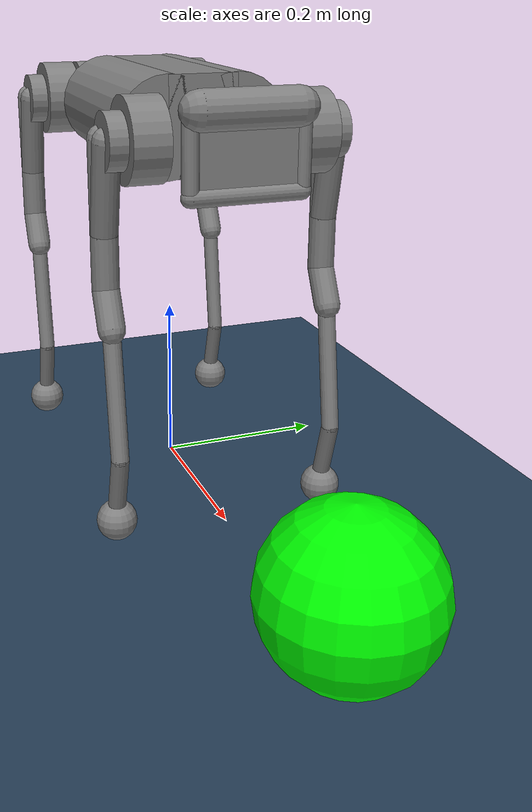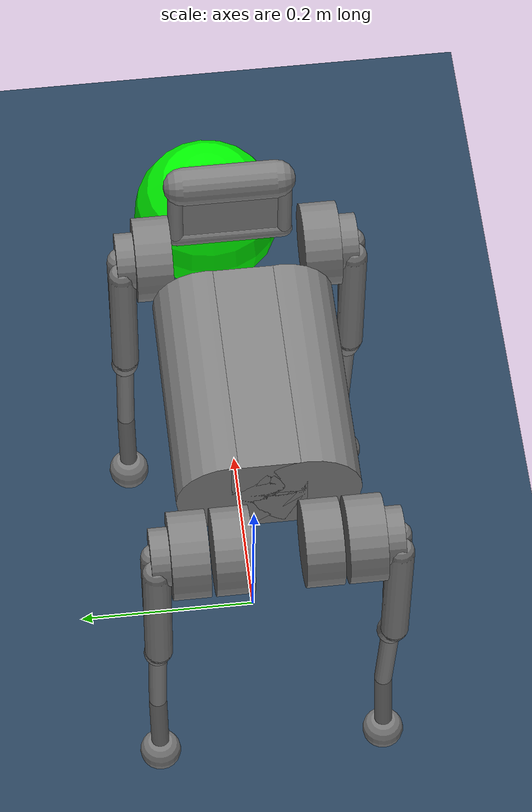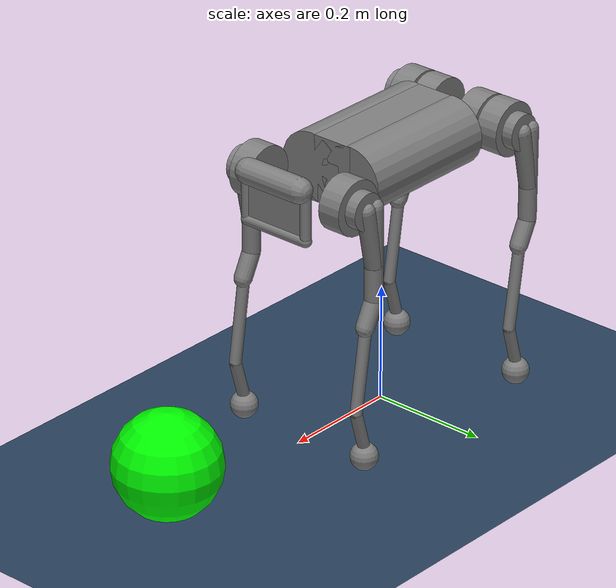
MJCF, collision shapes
<mujoco model="go1 scene">
    <include file="go1_copy_motor.xml"/>

    <statistic center="0 0 0.1" extent="0.8"/>

    <visual>
      <headlight diffuse="0.6 0.6 0.6" ambient="0.3 0.3 0.3" specular="0 0 0"/>
      <rgba haze="0.15 0.25 0.35 1"/>
      <global azimuth="-130" elevation="-20"/>
    </visual>

    <asset>
      <texture type="skybox" builtin="gradient" rgb1="0.3 0.5 0.7" rgb2="0 0 0" width="512" height="3072"/>
      <texture type="2d" name="groundplane" builtin="checker" mark="edge" rgb1="0.2 0.3 0.4" rgb2="0.1 0.2 0.3"
        markrgb="0.8 0.8 0.8" width="300" height="300"/>
      <material name="groundplane" texture="groundplane" texuniform="true" texrepeat="5 5" reflectance="0.2"/>
    </asset>

    <worldbody>
      <light pos="0 0 1.5" dir="0 0 -1" directional="true"/>
      <geom name="floor" size="0 0 0.05" type="plane" material="groundplane"/>
      <body name="soccer_ball" pos="0.5 0 0.09">
        <freejoint/>
        <geom type="sphere" size="0.0889" rgba="0 1 0 0.8" mass="0.318" material="groundplane" priority="1" condim="6" friction="0.7 0.05 0.0005"/>
        <!-- 分别为切向、扭转和滚动摩擦系数 -->
      </body>
    </worldbody>

    <!-- add ball + 7 dims -->
    <keyframe>
      <key name="home" qpos="0 0 0.27 1 0 0 0 -0.1 0.8 -1.5 0.1 0.8 -1.5 -0.1 1.0 -1.5 0.1 1.0 -1.5 0.5 0 0.09 1 0 0 0"
        ctrl="-0.1 0.8 -1.5 0.1 0.8 -1.5 -0.1 1.0 -1.5 0.1 1.0 -1.5" />
    </keyframe>

  </mujoco>

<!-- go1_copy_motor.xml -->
<mujoco model="go1">
  <compiler angle="radian" meshdir="assets" autolimits="true"/>

  <option cone="elliptic" impratio="100"/>

  <default>
    <default class="go1">
      <geom friction="0.6" margin="0.001" condim="1"/>
      <joint axis="0 1 0" damping="0.1" armature="0.01" frictionloss="0.2"/>
      <default class="abduction">
        <joint axis="1 0 0" range="-0.863 0.863"/>
        <motor ctrlrange="-23.7 23.7"/>
      </default>
      <default class="hip">
        <joint range="-0.686 4.501"/>
        <motor ctrlrange="-23.7 23.7"/>
      </default>
      <default class="knee">
        <joint range="-2.818 -0.888"/>
        <motor ctrlrange="-35.55 35.55"/>
      </default>
      <default class="visual">
        <geom type="mesh" contype="0" conaffinity="0" group="2" material="dark"/>
      </default>
      <default class="collision">
        <geom group="3" type="capsule"/>
        <default class="hip_left1">
          <geom size="0.046 0.02" pos="0 0.045 0" quat="1 1 0 0" type="cylinder"/>
        </default>
        <default class="hip_left2">
          <geom size="0.031 0.02" pos="0 0.065 0" quat="1 1 0 0" type="cylinder"/>
        </default>
        <default class="hip_left3">
          <geom size="0.046 0.02" quat="1 1 0 0" type="cylinder"/>
        </default>
        <default class="hip_right1">
          <geom size="0.046 0.02" pos="0 -0.045 0" quat="1 1 0 0" type="cylinder"/>
        </default>
        <default class="hip_right2">
          <geom size="0.031 0.02" pos="0 -0.065 0" quat="1 1 0 0" type="cylinder"/>
        </default>
        <default class="hip_right3">
          <geom size="0.046 0.02" quat="1 1 0 0" type="cylinder"/>
        </default>
        <default class="thigh1">
          <geom size="0.015" fromto="-0.02 0 0 -0.02 0 -0.16"/>
        </default>
        <default class="thigh2">
          <geom size="0.015" fromto="0 0 0 -0.02 0 -0.1"/>
        </default>
        <default class="thigh3">
          <geom size="0.015" fromto="-0.02 0 -0.16 0 0 -0.2"/>
        </default>
        <default class="calf1">
          <geom size="0.01" fromto="0 0 0 0.02 0 -0.13"/>
        </default>
        <default class="calf2">
          <geom size="0.01" fromto="0.02 0 -0.13 0 0 -0.2"/>
        </default>
        <default class="foot">
          <geom type="sphere" size="0.023" pos="0 0 -0.213" priority="1" solimp="0.015 1 0.023" condim="6"
            friction="0.8 0.02 0.01"/>
        </default>
      </default>
    </default>
  </default>

  <asset>
    <material name="dark" rgba="0.2 0.2 0.2 1"/>
    <mesh class="go1" file="trunk.stl"/>
    <mesh class="go1" file="hip.stl"/>
    <mesh class="go1" file="thigh_mirror.stl"/>
    <mesh class="go1" file="calf.stl"/>
    <mesh class="go1" file="thigh.stl"/>
  </asset>

  <worldbody>
    <light name="spotlight" mode="targetbodycom" target="trunk" pos="0 -1 2"/>
    <body name="trunk" pos="0 0 0.445" childclass="go1">
      <site name="head" pos="0.3 0 0" rgba="1 0 0 1" size="0.02" group="5"/>
      <inertial pos="0.0223 0.002 -0.0005" quat="-0.00342088 0.705204 0.000106698 0.708996" mass="5.204"
        diaginertia="0.0716565 0.0630105 0.0168101"/>
      <freejoint/>
      <geom class="visual" mesh="trunk"/>
      <geom class="collision" size="0.125 0.04 0.057" type="box"/>
      <geom class="collision" quat="1 0 1 0" pos="0 -0.04 0" size="0.058 0.125" type="cylinder"/>
      <geom class="collision" quat="1 0 1 0" pos="0 +0.04 0" size="0.058 0.125" type="cylinder"/>
      <geom class="collision" pos="0.25 0 0" size="0.005 0.06 0.05" type="box"/>
      <geom class="collision" pos="0.25 0.06 -0.01" size="0.009 0.035"/>
      <geom class="collision" pos="0.25 -0.06 -0.01" size="0.009 0.035"/>
      <geom class="collision" pos="0.25 0 -0.05" size="0.01 0.06" quat="1 1 0 0"/>
      <geom class="collision" pos="0.255 0 0.0355" size="0.021 0.052" quat="1 1 0 0"/>
      <site name="imu" pos="0 0 0"/>
      <body name="FL_hip" pos="0.1881 0.04675 0">
        <inertial pos="-0.0049166 -0.00762615 -8.865e-05" quat="0.482891 0.495027 0.514169 0.507341" mass="0.68"
          diaginertia="0.000734064 0.000468438 0.000398719"/>
        <joint class="abduction" name="FL_hip_joint"/>
        <geom class="visual" mesh="hip"/>
        <geom class="hip_left1"/>
        <geom class="hip_left2"/>
        <body name="FL_thigh" pos="0 0.08 0">
          <inertial pos="-0.00304722 -0.019315 -0.0305004" quat="0.753383 0.0775126 -0.0272313 0.65243" mass="1.009"
            diaginertia="0.00478717 0.00460903 0.000709268"/>
          <joint class="hip" name="FL_thigh_joint"/>
          <geom class="visual" mesh="thigh"/>
          <geom class="thigh1"/>
          <geom class="thigh2"/>
          <geom class="thigh3"/>
          <body name="FL_calf" pos="0 0 -0.213">
            <inertial pos="0.00429862 0.000976676 -0.146197" quat="0.691246 0.00357467 0.00511118 0.722592"
              mass="0.195862" diaginertia="0.00149767 0.00148468 3.58427e-05"/>
            <joint class="knee" name="FL_calf_joint"/>
            <geom class="visual" mesh="calf"/>
            <geom class="calf1"/>
            <geom class="calf2"/>
            <geom name="FL" class="foot"/>
            <site name="FL" pos="0 0 -0.213" type="sphere" size="0.023" group="5"/>
          </body>
        </body>
      </body>
      <body name="FR_hip" pos="0.1881 -0.04675 0">
        <inertial pos="-0.0049166 0.00762615 -8.865e-05" quat="0.507341 0.514169 0.495027 0.482891" mass="0.68"
          diaginertia="0.000734064 0.000468438 0.000398719"/>
        <joint class="abduction" name="FR_hip_joint"/>
        <geom class="visual" mesh="hip" quat="1 0 0 0"/>
        <geom class="hip_right1"/>
        <geom class="hip_right2"/>
        <body name="FR_thigh" pos="0 -0.08 0">
          <inertial pos="-0.00304722 0.019315 -0.0305004" quat="0.65243 -0.0272313 0.0775126 0.753383" mass="1.009"
            diaginertia="0.00478717 0.00460903 0.000709268"/>
          <joint class="hip" name="FR_thigh_joint"/>
          <geom class="visual" mesh="thigh_mirror"/>
          <geom class="thigh1"/>
          <geom class="thigh2"/>
          <geom class="thigh3"/>
          <body name="FR_calf" pos="0 0 -0.213">
            <inertial pos="0.00429862 0.000976676 -0.146197" quat="0.691246 0.00357467 0.00511118 0.722592"
              mass="0.195862" diaginertia="0.00149767 0.00148468 3.58427e-05"/>
            <joint class="knee" name="FR_calf_joint"/>
            <geom class="visual" mesh="calf"/>
            <geom class="calf1"/>
            <geom class="calf2"/>
            <geom name="FR" class="foot"/>
            <site name="FR" pos="0 0 -0.213" type="sphere" size="0.023" group="5"/>
          </body>
        </body>
      </body>
      <body name="RL_hip" pos="-0.1881 0.04675 0">
        <inertial pos="0.0049166 -0.00762615 -8.865e-05" quat="0.514169 0.507341 0.482891 0.495027" mass="0.68"
          diaginertia="0.000734064 0.000468438 0.000398719"/>
        <joint class="abduction" name="RL_hip_joint"/>
        <geom class="visual" quat="0 0 1 0" mesh="hip"/>
        <geom class="hip_left1"/>
        <geom class="hip_left2"/>
        <geom class="hip_left3"/>
        <body name="RL_thigh" pos="0 0.08 0">
          <inertial pos="-0.00304722 -0.019315 -0.0305004" quat="0.753383 0.0775126 -0.0272313 0.65243" mass="1.009"
            diaginertia="0.00478717 0.00460903 0.000709268"/>
          <joint class="hip" name="RL_thigh_joint"/>
          <geom class="visual" mesh="thigh"/>
          <geom class="thigh1"/>
          <geom class="thigh2"/>
          <geom class="thigh3"/>
          <body name="RL_calf" pos="0 0 -0.213">
            <inertial pos="0.00429862 0.000976676 -0.146197" quat="0.691246 0.00357467 0.00511118 0.722592"
              mass="0.195862" diaginertia="0.00149767 0.00148468 3.58427e-05"/>
            <joint class="knee" name="RL_calf_joint"/>
            <geom class="visual" mesh="calf"/>
            <geom class="calf1"/>
            <geom class="calf2"/>
            <geom name="RL" class="foot"/>
            <site name="RL" pos="0 0 -0.213" type="sphere" size="0.023" group="5"/>
          </body>
        </body>
      </body>
      <body name="RR_hip" pos="-0.1881 -0.04675 0">
        <inertial pos="0.0049166 0.00762615 -8.865e-05" quat="0.495027 0.482891 0.507341 0.514169" mass="0.68"
          diaginertia="0.000734064 0.000468438 0.000398719"/>
        <joint class="abduction" name="RR_hip_joint"/>
        <geom class="visual" quat="0 0 0 -1" mesh="hip"/>
        <geom class="hip_right1"/>
        <geom class="hip_right2"/>
        <geom class="hip_right3"/>
        <body name="RR_thigh" pos="0 -0.08 0">
          <inertial pos="-0.00304722 0.019315 -0.0305004" quat="0.65243 -0.0272313 0.0775126 0.753383" mass="1.009"
            diaginertia="0.00478717 0.00460903 0.000709268"/>
          <joint class="hip" name="RR_thigh_joint"/>
          <geom class="visual" mesh="thigh_mirror"/>
          <geom class="thigh1"/>
          <geom class="thigh2"/>
          <geom class="thigh3"/>
          <body name="RR_calf" pos="0 0 -0.213">
            <inertial pos="0.00429862 0.000976676 -0.146197" quat="0.691246 0.00357467 0.00511118 0.722592"
              mass="0.195862" diaginertia="0.00149767 0.00148468 3.58427e-05"/>
            <joint class="knee" name="RR_calf_joint"/>
            <geom class="visual" mesh="calf"/>
            <geom class="calf1"/>
            <geom class="calf2"/>
            <geom name="RR" class="foot"/>
            <site name="RR" pos="0 0 -0.213" type="sphere" size="0.023" group="5"/>
          </body>
        </body>
      </body>
    </body>
  </worldbody>

  <actuator>
    <motor class="abduction" name="FR_hip" joint="FR_hip_joint"/>
    <motor class="hip" name="FR_thigh" joint="FR_thigh_joint"/>
    <motor class="knee" name="FR_calf" joint="FR_calf_joint"/>
    <motor class="abduction" name="FL_hip" joint="FL_hip_joint"/>
    <motor class="hip" name="FL_thigh" joint="FL_thigh_joint"/>
    <motor class="knee" name="FL_calf" joint="FL_calf_joint"/>
    <motor class="abduction" name="RR_hip" joint="RR_hip_joint"/>
    <motor class="hip" name="RR_thigh" joint="RR_thigh_joint"/>
    <motor class="knee" name="RR_calf" joint="RR_calf_joint"/>
    <motor class="abduction" name="RL_hip" joint="RL_hip_joint"/>
    <motor class="hip" name="RL_thigh" joint="RL_thigh_joint"/>
    <motor class="knee" name="RL_calf" joint="RL_calf_joint"/>
  </actuator>

  <sensor>
    <jointpos name="FR_hip_pos" joint="FR_hip_joint" />
    <jointpos name="FR_thigh_pos" joint="FR_thigh_joint" />
    <jointpos name="FR_calf_pos" joint="FR_calf_joint" />
    <jointpos name="FL_hip_pos" joint="FL_hip_joint" />
    <jointpos name="FL_thigh_pos" joint="FL_thigh_joint" />
    <jointpos name="FL_calf_pos" joint="FL_calf_joint" />
    <jointpos name="RR_hip_pos" joint="RR_hip_joint" />
    <jointpos name="RR_thigh_pos" joint="RR_thigh_joint" />
    <jointpos name="RR_calf_pos" joint="RR_calf_joint" />
    <jointpos name="RL_hip_pos" joint="RL_hip_joint" />
    <jointpos name="RL_thigh_pos" joint="RL_thigh_joint" />
    <jointpos name="RL_calf_pos" joint="RL_calf_joint" />

    <jointvel name="FR_hip_vel" joint="FR_hip_joint" />
    <jointvel name="FR_thigh_vel" joint="FR_thigh_joint" />
    <jointvel name="FR_calf_vel" joint="FR_calf_joint" />
    <jointvel name="FL_hip_vel" joint="FL_hip_joint" />
    <jointvel name="FL_thigh_vel" joint="FL_thigh_joint" />
    <jointvel name="FL_calf_vel" joint="FL_calf_joint" />
    <jointvel name="RR_hip_vel" joint="RR_hip_joint" />
    <jointvel name="RR_thigh_vel" joint="RR_thigh_joint" />
    <jointvel name="RR_calf_vel" joint="RR_calf_joint" />
    <jointvel name="RL_hip_vel" joint="RL_hip_joint" />
    <jointvel name="RL_thigh_vel" joint="RL_thigh_joint" />
    <jointvel name="RL_calf_vel" joint="RL_calf_joint" />

    <jointactuatorfrc name="FR_hip_torque" joint="FR_hip_joint" noise="0.01" />
    <jointactuatorfrc name="FR_thigh_torque" joint="FR_thigh_joint" noise="0.01" />
    <jointactuatorfrc name="FR_calf_torque" joint="FR_calf_joint" noise="0.01" />
    <jointactuatorfrc name="FL_hip_torque" joint="FL_hip_joint" noise="0.01" />
    <jointactuatorfrc name="FL_thigh_torque" joint="FL_thigh_joint" noise="0.01" />
    <jointactuatorfrc name="FL_calf_torque" joint="FL_calf_joint" noise="0.01" />
    <jointactuatorfrc name="RR_hip_torque" joint="RR_hip_joint" noise="0.01" />
    <jointactuatorfrc name="RR_thigh_torque" joint="RR_thigh_joint" noise="0.01" />
    <jointactuatorfrc name="RR_calf_torque" joint="RR_calf_joint" noise="0.01" />
    <jointactuatorfrc name="RL_hip_torque" joint="RL_hip_joint" noise="0.01" />
    <jointactuatorfrc name="RL_thigh_torque" joint="RL_thigh_joint" noise="0.01" />
    <jointactuatorfrc name="RL_calf_torque" joint="RL_calf_joint" noise="0.01" />

    <framequat name="imu_quat" objtype="site" objname="imu" />
    <gyro name="imu_gyro" site="imu" />
    <accelerometer name="imu_acc" site="imu" />

    <framepos name="frame_pos" objtype="site" objname="imu" />
    <framelinvel name="frame_vel" objtype="site" objname="imu" />
  </sensor>

</mujoco>
